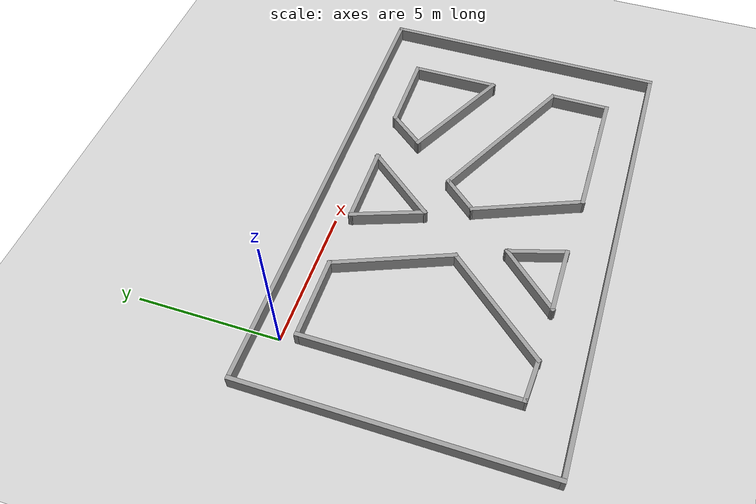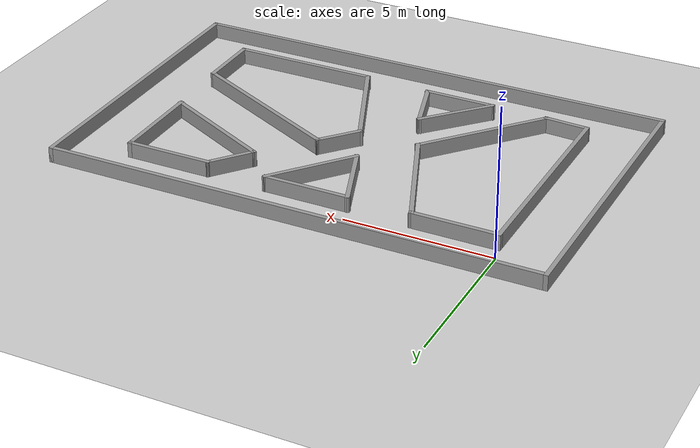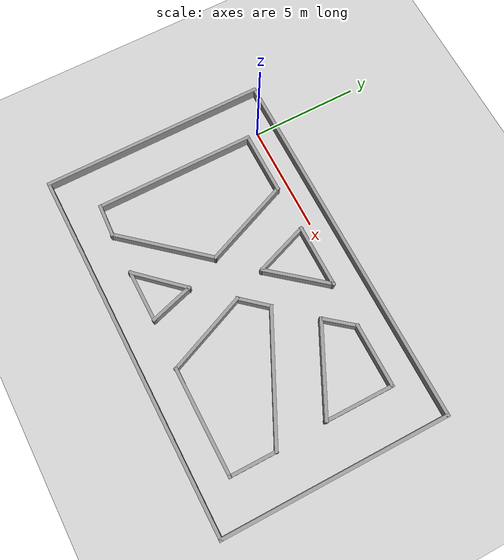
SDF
<sdf version="1.6">
 <world name="default">
  <light name="sun" type="directional">
   <pose>0 0 10 0 -0 0</pose>
   <diffuse>0.8 0.8 0.8 1</diffuse>
   <specular>0.2 0.2 0.2 1</specular>
   <attenuation>
    <range>1000</range>
    <constant>0.9</constant>
    <linear>0.01</linear>
    <quadratic>0.001</quadratic>
   </attenuation>
   <direction>-0.5 0.1 -0.9</direction>
  </light>
  <model name="ground_plane">
   <static>1</static>
   <link name="link">
    <collision name="collision">
     <geometry><plane><normal>0 0 1</normal><size>100 100</size></plane></geometry>
     <surface><friction><ode><mu>100</mu><mu2>50</mu2></ode></friction></surface>
    </collision>
    <visual name="visual">
     <cast_shadows>0</cast_shadows>
     <geometry><plane><normal>0 0 1</normal><size>100 100</size></plane></geometry>
     <material>
      <script><uri>file://media/materials/scripts/gazebo.material</uri><name>Gazebo/Grey</name></script>
     </material>
    </visual>
   </link>
  </model>
  <gravity>0 0 -9.8</gravity>
  <magnetic_field>6e-06 2.3e-05 -4.2e-05</magnetic_field>
  <atmosphere type="adiabatic"/>
  <physics name="default_physics" default="0" type="ode">
   <max_step_size>0.001</max_step_size>
   <real_time_factor>1</real_time_factor>
   <real_time_update_rate>1000</real_time_update_rate>
  </physics>
  <scene><ambient>0.4 0.4 0.4 1</ambient><background>0.7 0.7 0.7 1</background><shadows>1</shadows></scene>
  <spherical_coordinates>
   <surface_model>EARTH_WGS84</surface_model>
   <latitude_deg>0</latitude_deg>
   <longitude_deg>0</longitude_deg>
   <elevation>0</elevation>
   <heading_deg>0</heading_deg>
  </spherical_coordinates>
  <model name="race">
   <pose>6.52343 -4.33828 0 0 -0 0</pose>
   <link name="Wall_1">
    <collision name="Wall_1_Collision"><geometry><box><size>17 0.15 1</size></box></geometry></collision>
    <visual name="Wall_1_Visual">
     <geometry><box><size>17 0.15 1</size></box></geometry>
     <material>
      <script><uri>file://media/materials/scripts/gazebo.material</uri><name>Gazebo/Grey</name></script>
      <ambient>1 1 1 1</ambient>
     </material>
     <meta><layer>0</layer></meta>
    </visual>
    <pose>0 5.175 0 0 -0 0</pose>
   </link>
   <link name="Wall_11">
    <collision name="Wall_11_Collision"><geometry><box><size>4.37906 0.15 1</size></box></geometry></collision>
    <visual name="Wall_11_Visual">
     <geometry><box><size>4.37906 0.15 1</size></box></geometry>
     <material>
      <script><uri>file://media/materials/scripts/gazebo.material</uri><name>Gazebo/Grey</name></script>
      <ambient>1 1 1 1</ambient>
     </material>
     <meta><layer>0</layer></meta>
    </visual>
    <pose>-2.73939 1.80926 0 0 0 -1.18472</pose>
   </link>
   <link name="Wall_12">
    <collision name="Wall_12_Collision"><geometry><box><size>4.77694 0.15 1</size></box></geometry></collision>
    <visual name="Wall_12_Visual">
     <geometry><box><size>4.77694 0.15 1</size></box></geometry>
     <material>
      <script><uri>file://media/materials/scripts/gazebo.material</uri><name>Gazebo/Grey</name></script>
      <ambient>1 1 1 1</ambient>
     </material>
     <meta><layer>0</layer></meta>
    </visual>
    <pose>-3.4473 -1.90738 0 0 0 -2.2786</pose>
   </link>
   <link name="Wall_15">
    <collision name="Wall_15_Collision"><geometry><box><size>7.5 0.15 1</size></box></geometry></collision>
    <visual name="Wall_15_Visual">
     <geometry><box><size>7.5 0.15 1</size></box></geometry>
     <material>
      <script><uri>file://media/materials/scripts/gazebo.material</uri><name>Gazebo/Grey</name></script>
      <ambient>1 1 1 1</ambient>
     </material>
     <meta><layer>0</layer></meta>
    </visual>
    <pose>-6.38563 0.093148 0 0 0 -1.5708</pose>
   </link>
   <link name="Wall_16">
    <collision name="Wall_16_Collision"><geometry><box><size>1.5866 0.15 1</size></box></geometry></collision>
    <visual name="Wall_16_Visual">
     <geometry><box><size>1.5866 0.15 1</size></box></geometry>
     <material>
      <script><uri>file://media/materials/scripts/gazebo.material</uri><name>Gazebo/Grey</name></script>
      <ambient>1 1 1 1</ambient>
     </material>
     <meta><layer>0</layer></meta>
    </visual>
    <pose>-5.66854 -3.62349 0 0 0 -0.058</pose>
   </link>
   <link name="Wall_18">
    <collision name="Wall_18_Collision"><geometry><box><size>3 0.15 1</size></box></geometry></collision>
    <visual name="Wall_18_Visual">
     <geometry><box><size>3 0.15 1</size></box></geometry>
     <material>
      <script><uri>file://media/materials/scripts/gazebo.material</uri><name>Gazebo/Grey</name></script>
      <ambient>1 1 1 1</ambient>
     </material>
     <meta><layer>0</layer></meta>
    </visual>
    <pose>0.017329 3.78938 0 0 -0 0</pose>
   </link>
   <link name="Wall_19">
    <collision name="Wall_19_Collision"><geometry><box><size>3.26237 0.15 1</size></box></geometry></collision>
    <visual name="Wall_19_Visual">
     <geometry><box><size>3.26237 0.15 1</size></box></geometry>
     <material>
      <script><uri>file://media/materials/scripts/gazebo.material</uri><name>Gazebo/Grey</name></script>
      <ambient>1 1 1 1</ambient>
     </material>
     <meta><layer>0</layer></meta>
    </visual>
    <pose>0.459827 2.58257 0 0 0 -2.25409</pose>
   </link>
   <link name="Wall_20">
    <collision name="Wall_20_Collision"><geometry><box><size>2.72076 0.15 1</size></box></geometry></collision>
    <visual name="Wall_20_Visual">
     <geometry><box><size>2.72076 0.15 1</size></box></geometry>
     <material>
      <script><uri>file://media/materials/scripts/gazebo.material</uri><name>Gazebo/Grey</name></script>
      <ambient>1 1 1 1</ambient>
     </material>
     <meta><layer>0</layer></meta>
    </visual>
    <pose>-0.965173 2.58257 0 0 -0 1.92224</pose>
   </link>
   <link name="Wall_22">
    <collision name="Wall_22_Collision"><geometry><box><size>3 0.15 1</size></box></geometry></collision>
    <visual name="Wall_22_Visual">
     <geometry><box><size>3 0.15 1</size></box></geometry>
     <material>
      <script><uri>file://media/materials/scripts/gazebo.material</uri><name>Gazebo/Grey</name></script>
      <ambient>1 1 1 1</ambient>
     </material>
     <meta><layer>0</layer></meta>
    </visual>
    <pose>4.92504 3.78938 0 0 -0 0</pose>
   </link>
   <link name="Wall_23">
    <collision name="Wall_23_Collision"><geometry><box><size>3.25 0.15 1</size></box></geometry></collision>
    <visual name="Wall_23_Visual">
     <geometry><box><size>3.25 0.15 1</size></box></geometry>
     <material>
      <script><uri>file://media/materials/scripts/gazebo.material</uri><name>Gazebo/Grey</name></script>
      <ambient>1 1 1 1</ambient>
     </material>
     <meta><layer>0</layer></meta>
    </visual>
    <pose>6.35004 2.23938 0 0 0 -1.5708</pose>
   </link>
   <link name="Wall_24">
    <collision name="Wall_24_Collision"><geometry><box><size>4.40932 0.15 1</size></box></geometry></collision>
    <visual name="Wall_24_Visual">
     <geometry><box><size>4.40932 0.15 1</size></box></geometry>
     <material>
      <script><uri>file://media/materials/scripts/gazebo.material</uri><name>Gazebo/Grey</name></script>
      <ambient>1 1 1 1</ambient>
     </material>
     <meta><layer>0</layer></meta>
    </visual>
    <pose>4.44231 1.63598 0 0 -0 2.681</pose>
   </link>
   <link name="Wall_25">
    <collision name="Wall_25_Collision"><geometry><box><size>1.69548 0.15 1</size></box></geometry></collision>
    <visual name="Wall_25_Visual">
     <geometry><box><size>1.69548 0.15 1</size></box></geometry>
     <material>
      <script><uri>file://media/materials/scripts/gazebo.material</uri><name>Gazebo/Grey</name></script>
      <ambient>1 1 1 1</ambient>
     </material>
     <meta><layer>0</layer></meta>
    </visual>
    <pose>3.01731 3.18598 0 0 -0 0.896055</pose>
   </link>
   <link name="Wall_27">
    <collision name="Wall_27_Collision"><geometry><box><size>6.15881 0.15 1</size></box></geometry></collision>
    <visual name="Wall_27_Visual">
     <geometry><box><size>6.15881 0.15 1</size></box></geometry>
     <material>
      <script><uri>file://media/materials/scripts/gazebo.material</uri><name>Gazebo/Grey</name></script>
      <ambient>1 1 1 1</ambient>
     </material>
     <meta><layer>0</layer></meta>
    </visual>
    <pose>3.78163 -0.354011 0 0 0 -0.45766</pose>
   </link>
   <link name="Wall_3">
    <collision name="Wall_3_Collision"><geometry><box><size>10.5 0.15 1</size></box></geometry></collision>
    <visual name="Wall_3_Visual">
     <geometry><box><size>10.5 0.15 1</size></box></geometry>
     <material>
      <script><uri>file://media/materials/scripts/gazebo.material</uri><name>Gazebo/Grey</name></script>
      <ambient>1 1 1 1</ambient>
     </material>
     <meta><layer>0</layer></meta>
    </visual>
    <pose>8.425 0 0 0 0 -1.5708</pose>
   </link>
   <link name="Wall_30">
    <collision name="Wall_30_Collision"><geometry><box><size>2.25 0.15 1</size></box></geometry></collision>
    <visual name="Wall_30_Visual">
     <geometry><box><size>2.25 0.15 1</size></box></geometry>
     <material>
      <script><uri>file://media/materials/scripts/gazebo.material</uri><name>Gazebo/Grey</name></script>
      <ambient>1 1 1 1</ambient>
     </material>
     <meta><layer>0</layer></meta>
    </visual>
    <pose>6.47685 -2.73151 0 0 0 -1.5708</pose>
   </link>
   <link name="Wall_31">
    <collision name="Wall_31_Collision"><geometry><box><size>5 0.15 1</size></box></geometry></collision>
    <visual name="Wall_31_Visual">
     <geometry><box><size>5 0.15 1</size></box></geometry>
     <material>
      <script><uri>file://media/materials/scripts/gazebo.material</uri><name>Gazebo/Grey</name></script>
      <ambient>1 1 1 1</ambient>
     </material>
     <meta><layer>0</layer></meta>
    </visual>
    <pose>4.05185 -3.78151 0 0 -0 3.14159</pose>
   </link>
   <link name="Wall_32">
    <collision name="Wall_32_Collision"><geometry><box><size>4.0787 0.15 1</size></box></geometry></collision>
    <visual name="Wall_32_Visual">
     <geometry><box><size>4.0787 0.15 1</size></box></geometry>
     <material>
      <script><uri>file://media/materials/scripts/gazebo.material</uri><name>Gazebo/Grey</name></script>
      <ambient>1 1 1 1</ambient>
     </material>
     <meta><layer>0</layer></meta>
    </visual>
    <pose>0.873905 -1.96719 0 0 -0 1.96417</pose>
   </link>
   <link name="Wall_33">
    <collision name="Wall_33_Collision"><geometry><box><size>1.6335 0.15 1</size></box></geometry></collision>
    <visual name="Wall_33_Visual">
     <geometry><box><size>1.6335 0.15 1</size></box></geometry>
     <material>
      <script><uri>file://media/materials/scripts/gazebo.material</uri><name>Gazebo/Grey</name></script>
      <ambient>1 1 1 1</ambient>
     </material>
     <meta><layer>0</layer></meta>
    </visual>
    <pose>0.603686 0.410305 0 0 -0 0.86217</pose>
   </link>
   <link name="Wall_35">
    <collision name="Wall_35_Collision"><geometry><box><size>2.5 0.15 1</size></box></geometry></collision>
    <visual name="Wall_35_Visual">
     <geometry><box><size>2.5 0.15 1</size></box></geometry>
     <material>
      <script><uri>file://media/materials/scripts/gazebo.material</uri><name>Gazebo/Grey</name></script>
      <ambient>1 1 1 1</ambient>
     </material>
     <meta><layer>0</layer></meta>
    </visual>
    <pose>-1.84176 -3.69286 0 0 -0 0</pose>
   </link>
   <link name="Wall_36">
    <collision name="Wall_36_Collision"><geometry><box><size>2.16613 0.15 1</size></box></geometry></collision>
    <visual name="Wall_36_Visual">
     <geometry><box><size>2.16613 0.15 1</size></box></geometry>
     <material>
      <script><uri>file://media/materials/scripts/gazebo.material</uri><name>Gazebo/Grey</name></script>
      <ambient>1 1 1 1</ambient>
     </material>
     <meta><layer>0</layer></meta>
    </visual>
    <pose>-0.95676 -2.72741 0 0 -0 1.8626</pose>
   </link>
   <link name="Wall_37">
    <collision name="Wall_37_Collision"><geometry><box><size>2.7694 0.15 1</size></box></geometry></collision>
    <visual name="Wall_37_Visual">
     <geometry><box><size>2.7694 0.15 1</size></box></geometry>
     <material>
      <script><uri>file://media/materials/scripts/gazebo.material</uri><name>Gazebo/Grey</name></script>
      <ambient>1 1 1 1</ambient>
     </material>
     <meta><layer>0</layer></meta>
    </visual>
    <pose>-2.13176 -2.72741 0 0 0 -2.31274</pose>
   </link>
   <link name="Wall_4">
    <collision name="Wall_4_Collision"><geometry><box><size>17 0.15 1</size></box></geometry></collision>
    <visual name="Wall_4_Visual">
     <geometry><box><size>17 0.15 1</size></box></geometry>
     <material>
      <script><uri>file://media/materials/scripts/gazebo.material</uri><name>Gazebo/Grey</name></script>
      <ambient>1 1 1 1</ambient>
     </material>
     <meta><layer>0</layer></meta>
    </visual>
    <pose>0 -5.175 0 0 -0 3.14159</pose>
   </link>
   <link name="Wall_5">
    <collision name="Wall_5_Collision"><geometry><box><size>10.5 0.15 1</size></box></geometry></collision>
    <visual name="Wall_5_Visual">
     <geometry><box><size>10.5 0.15 1</size></box></geometry>
     <material>
      <script><uri>file://media/materials/scripts/gazebo.material</uri><name>Gazebo/Grey</name></script>
      <ambient>1 1 1 1</ambient>
     </material>
     <meta><layer>0</layer></meta>
    </visual>
    <pose>-8.425 0 0 0 -0 1.5708</pose>
   </link>
   <link name="Wall_7">
    <collision name="Wall_7_Collision"><geometry><box><size>3 0.15 1</size></box></geometry></collision>
    <visual name="Wall_7_Visual">
     <geometry><box><size>3 0.15 1</size></box></geometry>
     <material>
      <script><uri>file://media/materials/scripts/gazebo.material</uri><name>Gazebo/Grey</name></script>
      <ambient>1 1 1 1</ambient>
     </material>
     <meta><layer>0</layer></meta>
    </visual>
    <pose>-4.96063 3.76815 0 0 -0 0</pose>
   </link>
   <static>1</static>
  </model>
 </world>
</sdf>
